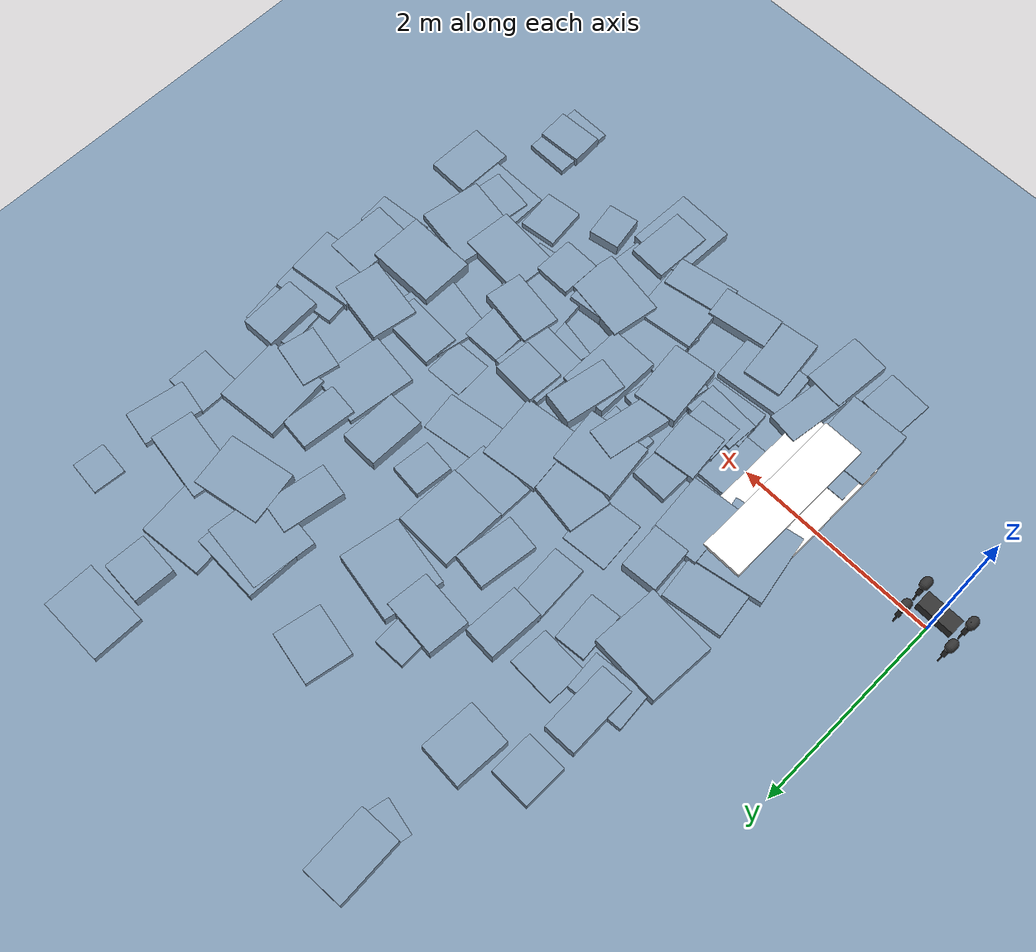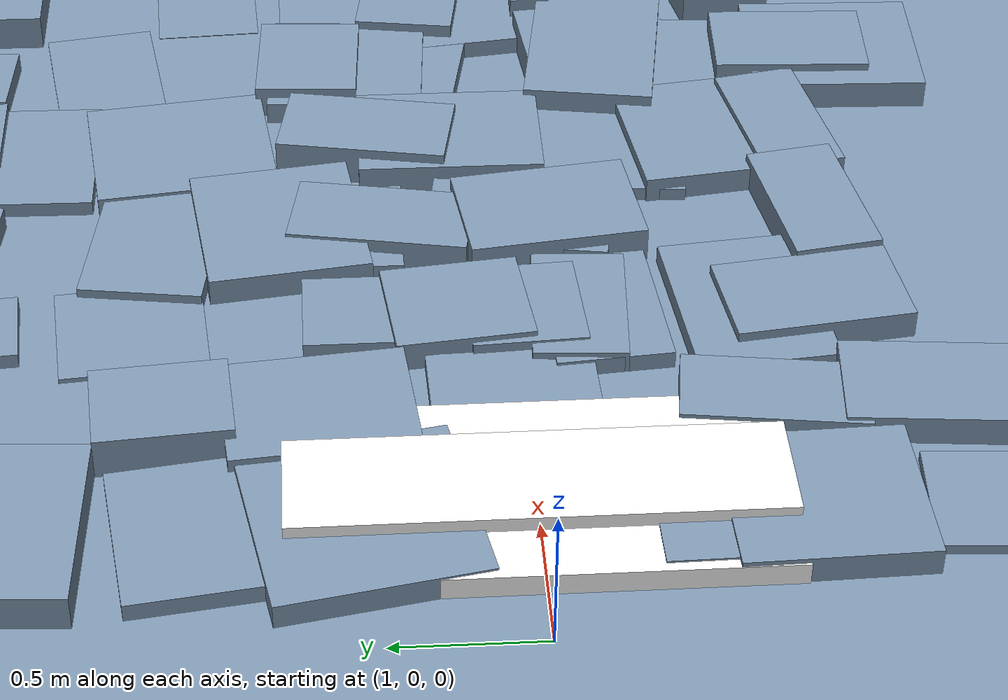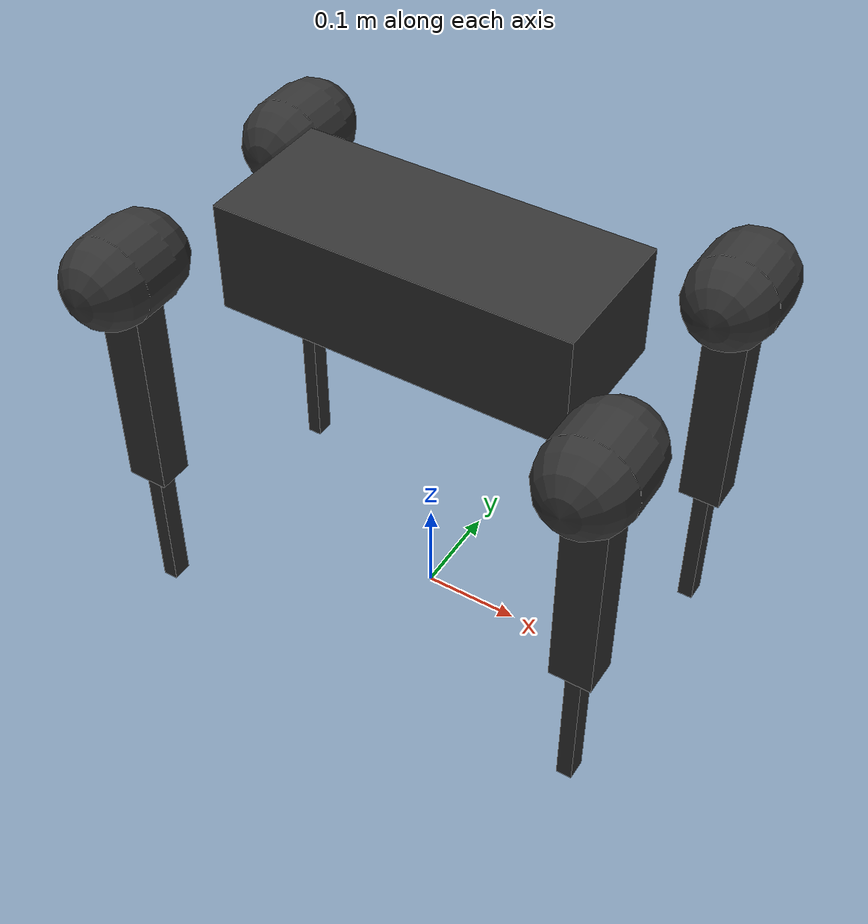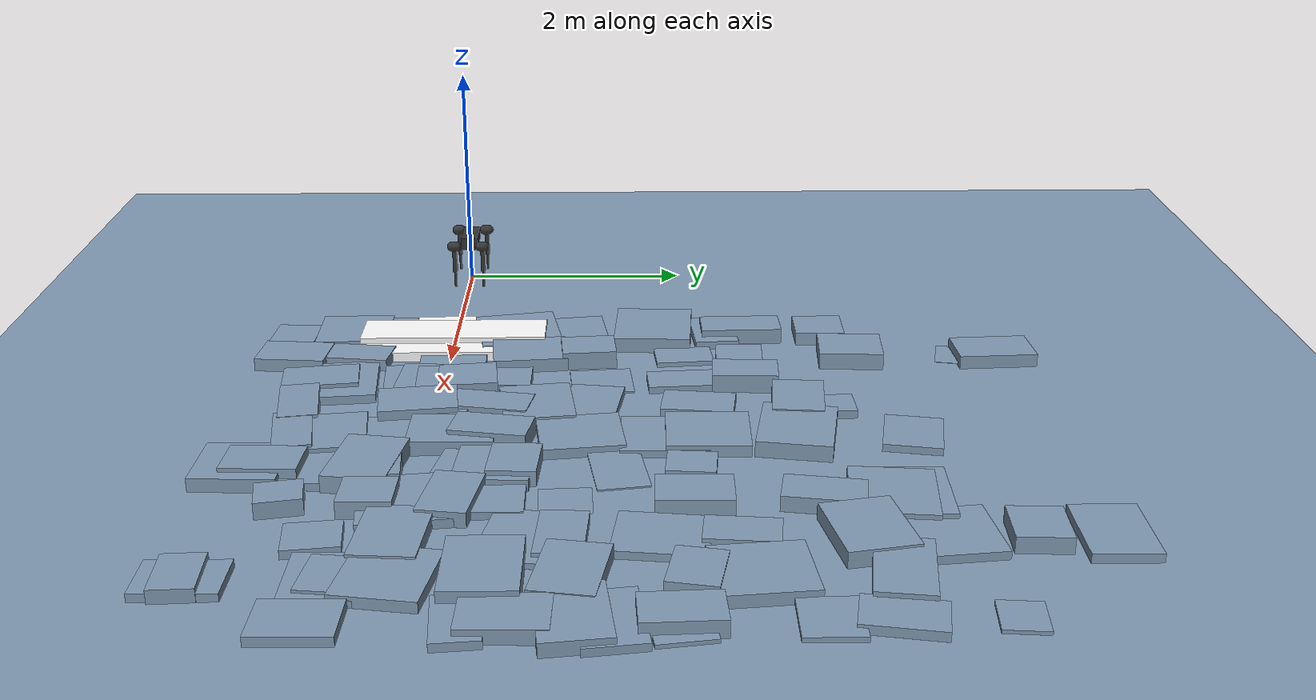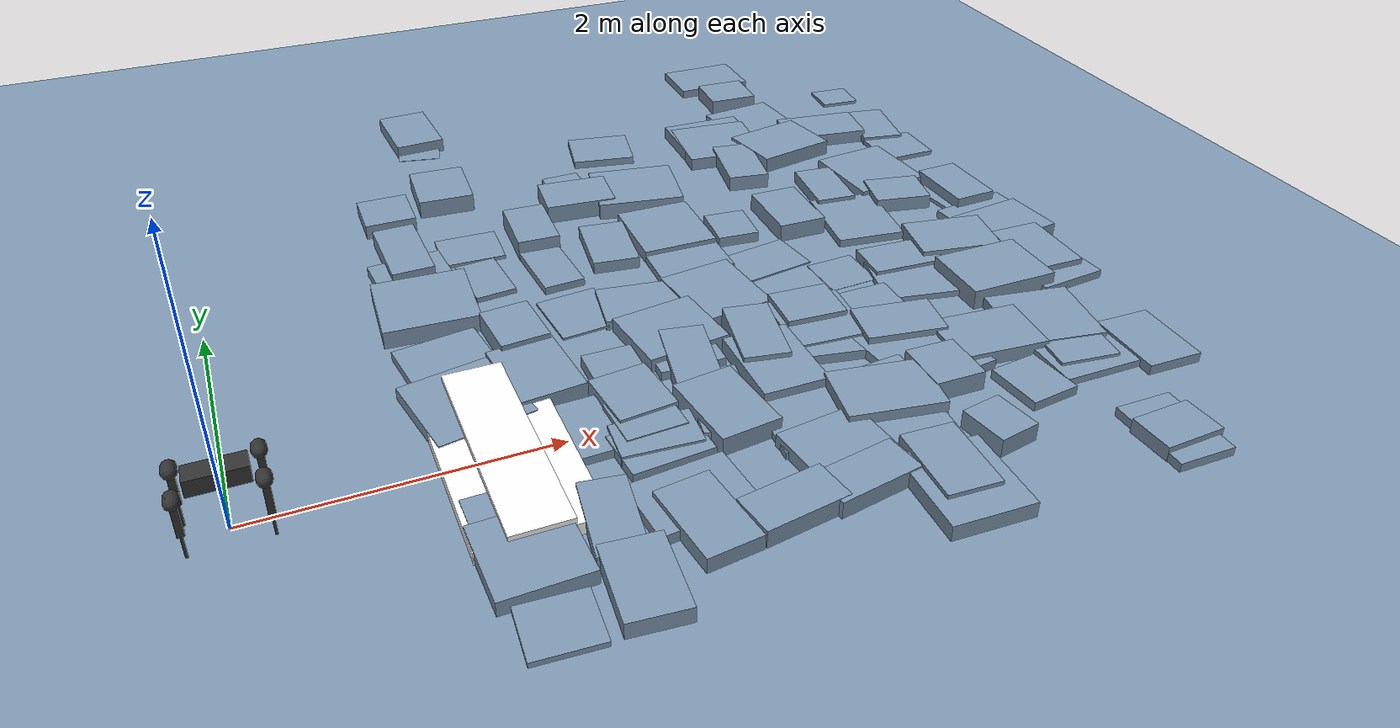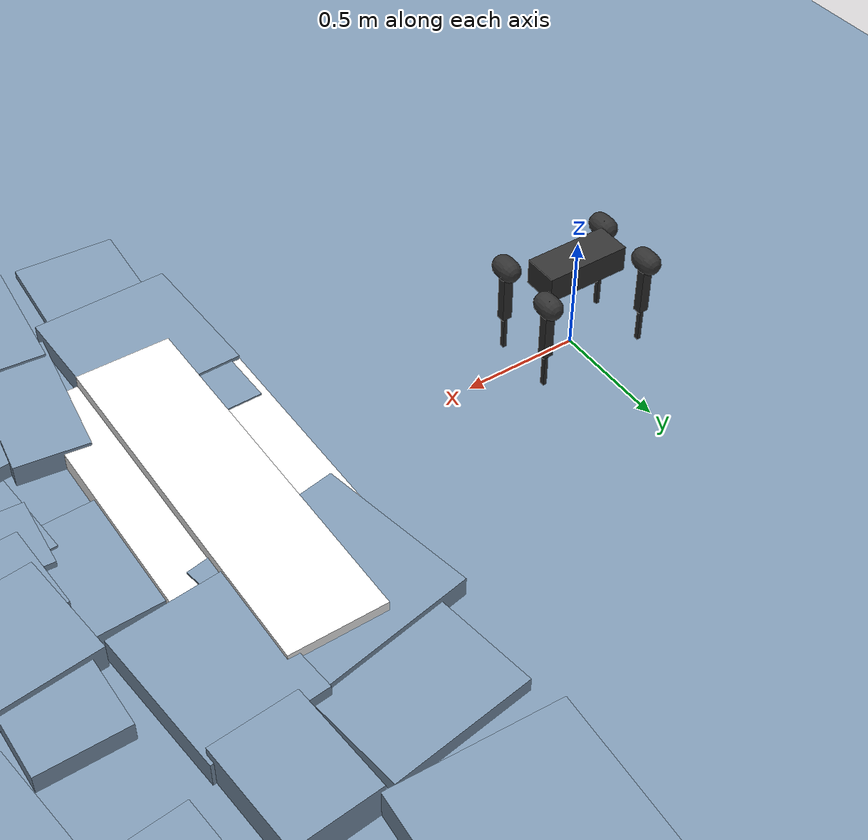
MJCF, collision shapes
<mujoco model="aliengo scene">

  <include file="aliengo_arm_leader_named.xml" />
  <include file="aliengo_arm_follower_named.xml" />

  <statistic center="0 0 0.1" extent="0.8" />

  <visual>
    <headlight diffuse="0.6 0.6 0.6" ambient="0.3 0.3 0.3" specular="0 0 0" />
    <rgba haze="0.15 0.25 0.35 1" />
    <global azimuth="-130" elevation="-20" />
  </visual>

  <asset>
    <texture type="skybox" builtin="gradient" rgb1="0.3 0.5 0.7" rgb2="0 0 0" width="512" height="3072" />
    <texture type="2d" name="groundplane" builtin="checker" mark="edge" rgb1="0.2 0.3 0.4" rgb2="0.1 0.2 0.3" markrgb="0.8 0.8 0.8" width="300" height="300" />
    <material name="groundplane" texture="groundplane" texuniform="true" texrepeat="5 5" reflectance="0.2" />
  </asset>

  <worldbody>
    <light pos="0 0 1.5" dir="0 0 -1" directional="true" />
    <geom name="floor" size="0 0 0.05" type="plane" material="groundplane" />

    <geom pos="1.6 0.0 0.025" type="box" size="0.2 0.8 0.1" quat="1.0 0.0 0.0 0.0" rgba="1 1 1 1" />
    <geom pos="1.3 0.0 0.025" type="box" size="0.1 0.8 0.05" quat="1.0 0.0 0.0 0.0" rgba="1 1 1 1" />
    <geom pos="1.9 0.0 0.025" type="box" size="0.1 0.8 0.05" quat="1.0 0.0 0.0 0.0" rgba="1 1 1 1" />
  <geom pos="1.5 -1.4174422179853896 0.02" type="box" size="0.2158256661512063 0.1974362012325551 0.01809121485055687" quat="0.999523340070565 0.0 0.0 -0.030872198726067175" /><geom pos="1.5 -0.8886456010825922 0.02" type="box" size="0.29007827083572946 0.31152130712054676 0.07232339692259922" quat="0.9999067252297956 0.0 0.0 0.013657995468805716" /><geom pos="1.5 -0.6837071723360797 0.02" type="box" size="0.2619163645718067 0.32905653796835965 0.06200295350571386" quat="0.9999670987288947 0.0 0.0 0.008111809891576638" /><geom pos="1.5 0.1465564996394355 0.02" type="box" size="0.2741165797397114 0.31778551303227276 0.010185946750093211" quat="0.9991336717000892 0.0 0.0 -0.041616175642392096" /><geom pos="1.5 0.5517550318124442 0.02" type="box" size="0.3354992326413033 0.3481867805209232 0.06291117552164183" quat="0.9958857547739877 0.0 0.0 0.09061767729447129" /><geom pos="1.5 1.010930129933246 0.02" type="box" size="0.2971721512878967 0.31560274422008583 0.038711763626778375" quat="0.9976379484668357 0.0 0.0 0.06869151169455488" /><geom pos="1.5 1.7463414973380642 0.02" type="box" size="0.34262882174813647 0.3314787214415848 0.10173134049669957" quat="0.9996430346023961 0.0 0.0 -0.026717098849101797" /><geom pos="1.5 2.2777661084453364 0.02" type="box" size="0.276793990522662 0.18751669494033243 0.04414901619069367" quat="0.9991005543941106 0.0 0.0 0.04240379946869027" /><geom pos="1.5 2.5165531158321732 0.02" type="box" size="0.15952056784318736 0.34869712839636424 0.10197383936111984" quat="0.9999053595567567 0.0 0.0 0.013757613516629411" /><geom pos="1.5 3.207055067918402 0.02" type="box" size="0.19783015536071918 0.21316122358304634 0.08371104354190896" quat="0.9999970138415886 0.0 0.0 -0.002443830580411811" /><geom pos="2.0 -1.3245887010655766 0.02" type="box" size="0.19379666454082975 0.29599077786892597 0.08071087032427668" quat="0.9990277766751177 0.0 0.0 -0.04408516112674756" /><geom pos="2.0 -0.8092888789699296 0.02" type="box" size="0.1513709995623131 0.3128838446898845 0.06985783116952915" quat="0.9977060452026343 0.0 0.0 -0.0676952536454299" /><geom pos="2.0 0.03329840536696649 0.02" type="box" size="0.2924244500880194 0.28030224308909724 0.02947323669881005" quat="0.9999039662647855 0.0 0.0 0.01385850814304347" /><geom pos="2.0 0.6814192387359341 0.02" type="box" size="0.23546644227539026 0.3121718593622482 0.08544090117068481" quat="0.998894558059947 0.0 0.0 0.04700704073033276" /><geom pos="2.0 1.1845555073069627 0.02" type="box" size="0.17681907023756116 0.22770380386590186 0.1224729761455728" quat="0.999186864920176 0.0 0.0 0.040318841389477666" /><geom pos="2.0 1.9989226568319256 0.02" type="box" size="0.15221416672049914 0.24302039011818527 0.019795036437604566" quat="0.9990563383799462 0.0 0.0 0.04343308350617482" /><geom pos="2.0 2.475270923233314 0.02" type="box" size="0.23592314379333834 0.19812001752811714 0.013959320207941536" quat="0.9998375512377693 0.0 0.0 -0.018024181947069316" /><geom pos="2.0 3.4251032742057532 0.02" type="box" size="0.2189543564535954 0.26957966274623707 0.11360782502430293" quat="0.9996307988300204 0.0 0.0 -0.027171051331430638" /><geom pos="2.0 4.333713365711712 0.02" type="box" size="0.17660613890106214 0.16361836811331404 0.0016335677559551898" quat="0.9951211542191698 0.0 0.0 -0.09866047043019407" /><geom pos="2.0 4.659154438313877 0.02" type="box" size="0.20383173531346693 0.3324783296610735 0.08349456352212502" quat="0.9995977111114939 0.0 0.0 0.028362227357217783" /><geom pos="2.5 -1.0115502591214134 0.02" type="box" size="0.18903259132760222 0.31046512648015145 0.07761107830651663" quat="0.9980553868297178 0.0 0.0 0.06233333634727316" /><geom pos="2.5 -0.791187728872013 0.02" type="box" size="0.33308861975303894 0.24317338476087377 0.04336902755184367" quat="0.9988488579892442 0.0 0.0 0.04796831134804157" /><geom pos="2.5 -0.2897883469409739 0.02" type="box" size="0.28095222945738846 0.20014230715726514 0.0396413861590984" quat="0.9991502642650326 0.0 0.0 0.04121588794525233" /><geom pos="2.5 -0.21329180720494656 0.02" type="box" size="0.2683739969139972 0.16132264849691763 0.05606908028543377" quat="0.9994456988603067 0.0 0.0 -0.03329106531237981" /><geom pos="2.5 -0.024801437720582076 0.02" type="box" size="0.2079711097251679 0.19679039341423543 0.06393460959848447" quat="0.9996359602414256 0.0 0.0 0.026980492808747494" /><geom pos="2.5 0.20069568695615692 0.02" type="box" size="0.20519845195540043 0.23759001316480974 0.08324843830631763" quat="0.9985582581786784 0.0 0.0 0.0536787203942478" /><geom pos="2.5 0.5656656707005201 0.02" type="box" size="0.1782204359744921 0.1602972509261111 0.0585092887706532" quat="0.999999772803856 0.0 0.0 -0.00067408622330208" /><geom pos="2.5 1.3054753535915191 0.02" type="box" size="0.22507007695534403 0.25210944369718463 0.008468153251933203" quat="0.9989861103055606 0.0 0.0 0.04501945597812505" /><geom pos="2.5 1.9754879102667329 0.02" type="box" size="0.15493674745962865 0.2908033741387673 0.029410408059955748" quat="0.9994465076505489 0.0 0.0 0.03326677539409859" /><geom pos="2.5 2.491083584937308 0.02" type="box" size="0.1624980306550094 0.2709145531614455 0.12495050920433891" quat="0.9997531255806753 0.0 0.0 -0.022219088452737224" /><geom pos="3.0 -1.0943066555857688 0.02" type="box" size="0.2946037810589746 0.1563166480093094 0.09560809274549852" quat="0.9968743621113103 0.0 0.0 0.07900320351206092" /><geom pos="3.0 -0.14959180356808854 0.02" type="box" size="0.2145399906696444 0.312770852232323 0.10428036383559043" quat="0.9981197279277708 0.0 0.0 0.06129444282635003" /><geom pos="3.0 -0.048410956195437116 0.02" type="box" size="0.18829128742906204 0.32312684468121367 0.06032833185419177" quat="0.9971012754029867 0.0 0.0 -0.07608578441297316" /><geom pos="3.0 0.4369129245330967 0.02" type="box" size="0.1569411960665551 0.31833891031323425 0.08493360327240822" quat="0.9959149273741025 0.0 0.0 -0.0902964973486578" /><geom pos="3.0 0.5602422238706111 0.02" type="box" size="0.23301274856895354 0.1936562467776612 0.03540150315268338" quat="0.9999611028164593 0.0 0.0 -0.008820025742055477" /><geom pos="3.0 0.7993784996858069 0.02" type="box" size="0.30530270994139347 0.28409359655845956 0.07334992572297407" quat="0.9979185965117734 0.0 0.0 0.06448623679493448" /><geom pos="3.0 1.2319178197857616 0.02" type="box" size="0.3470129820077583 0.21648375223955446 0.041649419656663425" quat="0.9973052147091953 0.0 0.0 -0.07336421957498017" /><geom pos="3.0 2.0845261750990547 0.02" type="box" size="0.17682036491966407 0.2906907531144052 0.06221464145649916" quat="0.9981391045361115 0.0 0.0 -0.060978094393391115" /><geom pos="3.0 2.87970033504162 0.02" type="box" size="0.2793165772926011 0.20707261232007124 0.11104287277475419" quat="0.9990715113806214 0.0 0.0 -0.04308265483510433" /><geom pos="3.0 3.181392115445507 0.02" type="box" size="0.15383008270766882 0.15538814032841436 0.03697903907605429" quat="0.9998545958073852 0.0 0.0 0.017052484946490462" /><geom pos="3.5 -1.046949338819988 0.02" type="box" size="0.2993333092174169 0.15064205276398862 0.09205309419731393" quat="0.9960503807680614 0.0 0.0 0.0887898584963395" /><geom pos="3.5 -0.8263705613846001 0.02" type="box" size="0.29560312163156877 0.3445394318631808 0.0682766598180881" quat="0.9980726996524941 0.0 0.0 0.062055509089704274" /><geom pos="3.5 -0.4169052137777034 0.02" type="box" size="0.31983675990984406 0.2664285212195369 0.024997337489686328" quat="0.9995278125707885 0.0 0.0 -0.030727054812571014" /><geom pos="3.5 0.1742982662346071 0.02" type="box" size="0.2362170553079273 0.3347532167838412 0.0873854633126539" quat="0.9999943818698547 0.0 0.0 -0.003352048437485922" /><geom pos="3.5 0.4762491480356019 0.02" type="box" size="0.16473749078051447 0.30782704461414556 0.12343856575901335" quat="0.9959277187147205 0.0 0.0 -0.09015530542176883" /><geom pos="3.5 1.1562316563026496 0.02" type="box" size="0.28092636110583097 0.3248205499366168 0.05327283374185965" quat="0.9982108586757799 0.0 0.0 0.059791986267075894" /><geom pos="3.5 1.8064709769633147 0.02" type="box" size="0.2930136123953113 0.34301152862897655 0.030222444001636525" quat="0.9999582200878604 0.0 0.0 -0.009141010814903918" /><geom pos="3.5 2.1367121283895 0.02" type="box" size="0.29151426630577154 0.3257110707294587 0.06726348367909206" quat="0.9999815027983265 0.0 0.0 -0.006082274344389796" /><geom pos="3.5 2.8249233927764186 0.02" type="box" size="0.34517013501019356 0.2934984646872102 0.10134621719331548" quat="0.9964114126945256 0.0 0.0 -0.08464216828566998" /><geom pos="3.5 3.7230724346648305 0.02" type="box" size="0.2601488709091854 0.22890517877626065 0.031321023241439316" quat="0.9958017447588003 0.0 0.0 -0.091536250389281" /><geom pos="4.0 -1.3252709225848909 0.02" type="box" size="0.28338087181684085 0.3232187081091171 0.08092989300417136" quat="0.9998682844047296 0.0 0.0 -0.01623002900621652" /><geom pos="4.0 -1.1577463232550644 0.02" type="box" size="0.1856209683685977 0.288606302831777 0.11038330716149415" quat="0.999748694785526 0.0 0.0 -0.022417566206823513" /><geom pos="4.0 -0.8269959753717331 0.02" type="box" size="0.2639139826040676 0.21879204352738055 0.03347111276359796" quat="0.999252527805292 0.0 0.0 -0.038657284885701824" /><geom pos="4.0 -0.4065558766024626 0.02" type="box" size="0.33511085148267994 0.239592577121516 0.10928597628566644" quat="0.9968576364874777 0.0 0.0 -0.07921396705505769" /><geom pos="4.0 -0.3519034375336956 0.02" type="box" size="0.28272031706409195 0.20631744989143885 0.10294335292849376" quat="0.9988649601861499 0.0 0.0 0.04763183087307353" /><geom pos="4.0 0.33336592320079017 0.02" type="box" size="0.2179373872674167 0.2264273940487563 0.041794812039564755" quat="0.9957831000725842 0.0 0.0 -0.0917388555075431" /><geom pos="4.0 0.5363403510585965 0.02" type="box" size="0.27785493474361544 0.28800310751828617 0.058212297053150744" quat="0.9994632769374251 0.0 0.0 -0.032759091158087124" /><geom pos="4.0 0.6831903420557079 0.02" type="box" size="0.22305683374521254 0.18824209464528163 0.09735867041525294" quat="0.999607357686289 0.0 0.0 -0.02802017950398263" /><geom pos="4.0 1.4496496928464215 0.02" type="box" size="0.32425697204944137 0.19867669094609328 0.0059177347138938685" quat="0.9972091737725184 0.0 0.0 0.07465831329417486" /><geom pos="4.0 1.993465911330821 0.02" type="box" size="0.16328759573827675 0.18881335828503254 0.05134832214688492" quat="0.9990679902992349 0.0 0.0 -0.04316423009214734" /><geom pos="4.5 -0.9424573615391397 0.02" type="box" size="0.15061616381285997 0.1732625574823039 0.10257847103928347" quat="0.9958746809947502 0.0 0.0 0.09073929553178493" /><geom pos="4.5 -0.31699131320986984 0.02" type="box" size="0.1823801179242186 0.2004100554814909 0.11294159346744277" quat="0.9999808981090212 0.0 0.0 -0.0061808912848693" /><geom pos="4.5 -0.05749066974984207 0.02" type="box" size="0.34496532017467973 0.34086435647222757 0.04194854716644379" quat="0.9982269223849312 0.0 0.0 0.05952320073642326" /><geom pos="4.5 0.2682997003535914 0.02" type="box" size="0.29083218731737775 0.18676755107938592 0.09141575193808768" quat="0.9970619622112944 0.0 0.0 -0.07659923962653503" /><geom pos="4.5 0.5963387387554171 0.02" type="box" size="0.19757739223350385 0.1964733716465852 0.02976951217191401" quat="0.9999739469152494 0.0 0.0 0.007218413311657299" /><geom pos="4.5 1.0789707216783988 0.02" type="box" size="0.1892766368562454 0.19263773675759882 0.0012595347333741597" quat="0.9996917831765811 0.0 0.0 0.024826168637701183" /><geom pos="4.5 1.9970299848347581 0.02" type="box" size="0.19128899841863342 0.2832436872047358 0.10901237934997114" quat="0.999980373669378 0.0 0.0 -0.006265163689106606" /><geom pos="4.5 2.9181808379260223 0.02" type="box" size="0.16677683825468903 0.3036347759391822 0.09439050360086841" quat="0.9966295927266113 0.0 0.0 -0.08203325485185169" /><geom pos="4.5 3.4066862579994224 0.02" type="box" size="0.33685173723932815 0.31598290815031216 0.073594140886547" quat="0.9988223421066106 0.0 0.0 -0.04851730524941663" /><geom pos="4.5 3.5648910135062417 0.02" type="box" size="0.341277982887229 0.2544158057739707 0.07338435178241459" quat="0.999928355971966 0.0 0.0 -0.011970084511023125" /><geom pos="5.0 -0.6169554950595848 0.02" type="box" size="0.18213487634755118 0.2050184533916255 0.03928045069395818" quat="0.9982071343113812 0.0 0.0 0.05985413110103672" /><geom pos="5.0 -0.0800442925151148 0.02" type="box" size="0.3357712590091431 0.23780358100321208 0.07325056604806165" quat="0.9992496945609123 0.0 0.0 -0.038730452100686145" /><geom pos="5.0 0.799080126455844 0.02" type="box" size="0.34137304704807936 0.26779538453591617 0.02305918000840851" quat="0.995873549303741 0.0 0.0 -0.09075171511971204" /><geom pos="5.0 1.070287550702104 0.02" type="box" size="0.2878117961474973 0.17397469349553257 0.05111729674458551" quat="0.9996352172736683 0.0 0.0 -0.02700800596538032" /><geom pos="5.0 1.7591192665986775 0.02" type="box" size="0.2682807501436054 0.33762868668280444 0.03257909758475064" quat="0.9980028964210316 0.0 0.0 -0.06316817818515755" /><geom pos="5.0 2.302972283782438 0.02" type="box" size="0.16009632528006112 0.2711199757606468 0.06518857291329506" quat="0.9987807590768782 0.0 0.0 -0.04936593256300213" /><geom pos="5.0 3.1631920013929724 0.02" type="box" size="0.33430007454212596 0.26376788131992307 0.0969454372270926" quat="0.9954063816096228 0.0 0.0 0.09573993655125322" /><geom pos="5.0 3.7241754058924466 0.02" type="box" size="0.31577846670675136 0.3183448819012602 0.03599003759850093" quat="0.9984813020856069 0.0 0.0 0.055091645332400456" /><geom pos="5.0 4.323871717130019 0.02" type="box" size="0.2118713685585188 0.20110206575736228 0.09959262956867757" quat="0.9997435691857208 0.0 0.0 -0.022644996617260483" /><geom pos="5.0 4.840910401740512 0.02" type="box" size="0.3342953494664468 0.2468829424650349 0.0416792983718432" quat="0.9999958440516991 0.0 0.0 -0.002883033008838587" /><geom pos="5.5 -1.3867255552345616 0.02" type="box" size="0.22138465540086416 0.1566526355040535 0.0756368076700809" quat="0.9996465374249541 0.0 0.0 0.02658571447789" /><geom pos="5.5 -1.368564950867872 0.02" type="box" size="0.20681869074267878 0.2964729187685849 0.034411946916982" quat="0.9999985640344742 0.0 0.0 -0.0016946766622951716" /><geom pos="5.5 -0.4022294605666219 0.02" type="box" size="0.21892034395926224 0.1906194128640018 0.04855909273023547" quat="0.9982724234260512 0.0 0.0 -0.05875515830187946" /><geom pos="5.5 -0.37574462613418946 0.02" type="box" size="0.29284178870491084 0.333002927729864 0.026781263438574024" quat="0.9999998804019086 0.0 0.0 -0.0004890768533195866" /><geom pos="5.5 -0.039585141918791145 0.02" type="box" size="0.31829161717677923 0.3028219395102404 0.05597593022706454" quat="0.9966866241668071 0.0 0.0 -0.08133740349294345" /><geom pos="5.5 0.5777523035918009 0.02" type="box" size="0.3429285054984303 0.2662114815848045 0.12037237067372734" quat="0.9999985892868974 0.0 0.0 0.0016797095627225974" /><geom pos="5.5 1.1508333455900779 0.02" type="box" size="0.3194195319863309 0.22757385029036042 0.08471277869874452" quat="0.9963880424260951 0.0 0.0 -0.0849168352583513" /><geom pos="5.5 1.973598379703284 0.02" type="box" size="0.22691721060103906 0.18318938346671937 0.08391736489455896" quat="0.9951966648953509 0.0 0.0 -0.09789585374861733" /><geom pos="5.5 2.403015576063175 0.02" type="box" size="0.31060814714268387 0.3364712091598494 0.06670711488381487" quat="0.9987869898321319 0.0 0.0 0.04923970899658954" /><geom pos="5.5 3.3235063500956583 0.02" type="box" size="0.3499859395549121 0.20768081042678488 0.07861562497187549" quat="0.9975475780296272 0.0 0.0 -0.06999163926659191" /><geom pos="6.0 -0.531848199071087 0.02" type="box" size="0.2066634996442175 0.2827736485778719 0.04465770715458006" quat="0.999964959590485 0.0 0.0 -0.008371355397993822" /><geom pos="6.0 0.4566757377332398 0.02" type="box" size="0.2678905057970516 0.1653058021538868 0.03524300888461222" quat="0.9989595029342522 0.0 0.0 0.045606046719177985" /><geom pos="6.0 0.7542184098702989 0.02" type="box" size="0.2089547913249905 0.3001803728311674 0.0810289510105987" quat="0.9999637169310204 0.0 0.0 -0.00851849878195775" /><geom pos="6.0 1.179357140056847 0.02" type="box" size="0.3235379713634223 0.24028842626442612 0.07740620015684986" quat="0.9982296608246317 0.0 0.0 0.0594772582584356" /><geom pos="6.0 1.4129742177693867 0.02" type="box" size="0.3175060042850115 0.21640019291301346 0.031169676706356383" quat="0.997859740425469 0.0 0.0 0.06539066017418398" /><geom pos="6.0 1.848772008816605 0.02" type="box" size="0.25911992585767424 0.2032567961641734 0.014996719499816027" quat="0.9974556345848685 0.0 0.0 0.07128995044813329" /><geom pos="6.0 1.8593910078699563 0.02" type="box" size="0.1730918642535424 0.28192042318256944 0.10564131733674678" quat="0.9997395307374871 0.0 0.0 0.022822591456473657" /><geom pos="6.0 2.7868351313945228 0.02" type="box" size="0.22706141035214364 0.20884711566355427 0.019264432726920203" quat="0.9999999800601471 0.0 0.0 -0.00019969903689586577" /><geom pos="6.0 3.239505928249126 0.02" type="box" size="0.17492000366075994 0.28543534967828743 0.04254670792362242" quat="0.9961113990325939 0.0 0.0 -0.08810267145398262" /><geom pos="6.0 3.9810036160322255 0.02" type="box" size="0.16812585031633331 0.15649764362439078 0.013483968953867026" quat="0.9990698417996832 0.0 0.0 -0.04312135441235639" /></worldbody>

    <keyframe>

        <key name="leader_home" qpos="0.8 0 0.35 1 0 0 0 0 0.9 -1.8 0 0.9 -1.8 0 0.9 -1.8 0 0.9 -1.8 0 0 0. 0.8
                                      -0.8 0  0.35 1 0 0 0 0 0.9 -1.8 0 0.9 -1.8 0 0.9 -1.8 0 0.9 -1.8 0 0 0. 0.8
        0 0 0.35 1 0 0 0                                                                                                                              "
        ctrl="0 0.9 -1.8 0 0.9 -1.8 0 0.9 -1.8 0 0.9 -1.8 0 0 0 0 0.9 -1.8 0 0.9 -1.8 0 0.9 -1.8 0 0.9 -1.8 0 0 0                      " />

    </keyframe>
</mujoco>

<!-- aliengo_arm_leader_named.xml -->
<mujoco model="aliengo_description">
    <compiler angle="radian" meshdir="./assets/" autolimits="true"/>
    <option cone="elliptic" impratio="100" />
    <size njmax="500" nconmax="100" />
    <option gravity='0 0 -9.806' timestep='0.002'/>

    <default>
        <geom contype="1" conaffinity="1" friction="0.8 0.02 0.01" rgba="0.5 0.6 0.7 1" margin="0.001" group="0"/>

        <light castshadow="false" diffuse="1 1 1"/>
        <camera fovy="60"/>
        <joint damping="3" armature="0.01" frictionloss="0.2" />

        <default class="leader/visual">
            <geom type="mesh" contype="0" conaffinity="0" group="2"/>
        </default>
        <default class="leader/collision">
            <geom group="3" rgba="0.2 0.2 0.2 0.5"/>
        </default>

        <default class="leader/hip">
            <motor ctrlrange="-44.4 44.4"/>
        </default>
        <default class="leader/thigh">
            <motor ctrlrange="-35.278 35.278"/>
        </default>
        <default class="leader/calf">
            <motor ctrlrange="-35.278 35.278"/>
        </default>

    </default>
    <!-- No rename the assests these are the mesh files-->
    <asset>
        <mesh name="leader/trunk" file="trunk.stl" />
        <mesh name="leader/hip" file="hip.stl" />
        <mesh name="leader/thigh_mirror" file="thigh_mirror.stl" />
        <mesh name="leader/calf" file="calf.stl" />
        <mesh name="leader/thigh" file="thigh.stl" />

    </asset>

    <!-- pos is used to set the position-->
    <worldbody>
        <light directional="true" diffuse=".8 .8 .8" pos="0 0 10" dir="0 0 -10"/>
        <camera pos="1.794 0.068 0.397" mode="trackcom" xyaxes="0.008 1.000 0.000 -0.155 0.001 0.988"/>
        <camera name="leader/track" mode="trackcom" pos="0 -1.3 1.6" xyaxes="1 0 0 0 0.707 0.707"/>

        <body name="leader/trunk" pos="0 0 0.4">
            <inertial pos="0.00846406 0.00404455 -0.000762916" quat="-3.12625e-05 0.708321 0.00247254 0.705886" mass="13.042" diaginertia="0.174706 0.161175 0.033357" />
            <freejoint/>

            <!-- trunk visual mesh and collision -->
            <geom type="mesh" class="leader/visual" rgba="0.2 0.2 0.2 1" mesh="leader/trunk"/>
            <geom type="box" class="leader/collision" size="0.18 0.075 0.056"/>

            <!-- modify this to add payload -->

            <!-- imu and camera -->
            <site name="leader/imu" pos="0 0 0"/>
            <camera name="leader/robotcam" pos="0.31 -0.005 0.00292751" quat= "0.4 0.4 -0.4 -0.4"/>

            <!-- FL leg -->
            <body name="leader/FL_hip" pos="0.2399 0.051 0">
                <inertial pos="-0.022191 0.015144 -1.5e-05" quat="-0.0135493 0.706835 0.0117635 0.707151" mass="1.993" diaginertia="0.00558695 0.00491009 0.00290132" />
                <joint name="leader/FL_hip_joint" pos="0 0 0" axis="1 0 0" limited="true" range="-1.22173 1.22173" />

                <!-- FL_hip visual mesh and collision -->
                <geom type="mesh" class="leader/visual" rgba="0.2 0.2 0.2 1" mesh="leader/hip"/>
                <geom type="capsule" class="leader/collision" size="0.046 0.0209" pos="0 0.083 0" quat="0.707107 0.707107 0 0"/>

                <body name="leader/FL_thigh" pos="0 0.083 0">
                    <inertial pos="-0.005607 -0.003877 -0.048199" quat="0.717987 -0.031246 -0.0335669 0.694544" mass="0.639" diaginertia="0.0058474 0.00571186 0.000324584" />
                    <joint name="leader/FL_thigh_joint" pos="0 0 0" axis="0 1 0" />

                    <!-- FL_thigh visual mesh and collision -->
                    <geom type="mesh" class="leader/visual" rgba="0.2 0.2 0.2 1" mesh="leader/thigh"/>
                    <geom type="box" class="leader/collision" size="0.125 0.0187 0.0215" pos="0 0 -0.125" quat="0.707107 0 0.707107 0"/>

                    <body name="leader/FL_calf" pos="0 0 -0.25">
                        <inertial pos="0.00215606 4.88427e-05 -0.166671" quat="0.707462 0.00517582 0.00535172 0.706712" mass="0.267" diaginertia="0.00690975 0.00689712 5.4885e-05" />
                        <joint name="leader/FL_calf_joint" pos="0 0 0" axis="0 1 0" limited="true" range="-2.77507 -0.645772" />

                        <!-- FL_calf visual mesh and collision -->
                        <geom type="mesh" class="leader/visual" rgba="0 0 0 1" mesh="leader/calf" />
                        <geom type="box" class="leader/collision" size="0.125 0.0104 0.008" pos="0 0 -0.125" quat="0.707107 0 0.707107 0"/>

                        <!-- FL_foot only collision -->
                        <geom name="FL1" class="leader/collision" size="0.0265" pos="0 0 -0.25" />
                    </body>
                </body>
            </body>

            <!-- FR leg -->
            <body name="leader/FR_hip" pos="0.2399 -0.051 0">
                <inertial pos="-0.022191 -0.015144 -1.5e-05" quat="0.0135493 0.706835 -0.0117635 0.707151" mass="1.993" diaginertia="0.00558695 0.00491009 0.00290132" />
                <joint name="leader/FR_hip_joint" pos="0 0 0" axis="1 0 0" limited="true" range="-1.22173 1.22173" />

                <!-- FR_hip visual mesh and collision -->
                <geom type="mesh" mesh="leader/hip" class="leader/visual" quat="0 1 0 0" rgba="0.2 0.2 0.2 1"/>
                <geom type="capsule" class="leader/collision" size="0.046 0.0209" pos="0 -0.083 0" quat="0.707107 0.707107 0 0"/>

                <body name="leader/FR_thigh" pos="0 -0.083 0">
                    <inertial pos="-0.005607 0.003877 -0.048199" quat="0.694544 -0.0335669 -0.031246 0.717987" mass="0.639" diaginertia="0.0058474 0.00571186 0.000324584" />
                    <joint name="leader/FR_thigh_joint" pos="0 0 0" axis="0 1 0" />

                    <!-- FR_thigh visual mesh and collision -->
                    <geom type="mesh" mesh="leader/thigh_mirror" class="leader/visual" rgba="0.2 0.2 0.2 1" />
                    <geom type="box" class="leader/collision" size="0.125 0.0187 0.0215" pos="0 0 -0.125" quat="0.707107 0 0.707107 0"/>

                    <body name="leader/FR_calf" pos="0 0 -0.25">
                        <inertial pos="0.00215606 4.88427e-05 -0.166671" quat="0.707462 0.00517582 0.00535172 0.706712" mass="0.267" diaginertia="0.00690975 0.00689712 5.4885e-05" />
                        <joint name="leader/FR_calf_joint" pos="0 0 0" axis="0 1 0" limited="true" range="-2.77507 -0.645772" />

                        <!-- FR_calf visual mesh and collision -->
                        <geom type="mesh" mesh="leader/calf" class="leader/visual" rgba="0 0 0 1"/>
                        <geom type="box" class="leader/collision" size="0.125 0.0104 0.008" pos="0 0 -0.125" quat="0.707107 0 0.707107 0"/>

                        <!-- FR_foot only collision -->
                        <geom name="FR1" class="leader/collision" size="0.0265" pos="0 0 -0.25"/>
                    </body>
                </body>
            </body>

            <!-- RL leg -->
            <body name="leader/RL_hip" pos="-0.2399 0.051 0">
                <inertial pos="0.022191 0.015144 -1.5e-05" quat="0.0117635 0.707151 -0.0135493 0.706835" mass="1.993" diaginertia="0.00558695 0.00491009 0.00290132" />
                <joint name="leader/RL_hip_joint" pos="0 0 0" axis="1 0 0" limited="true" range="-1.22173 1.22173" />

                <!-- RL_hip visual mesh and collision -->
                <geom type="mesh" class="leader/visual" quat="0 0 1 0" rgba="0.2 0.2 0.2 1" mesh="leader/hip"/>
                <geom type="capsule" class="leader/collision" size="0.046 0.0209" pos="0 0.083 0" quat="0.707107 0.707107 0 0"/>

                <body name="leader/RL_thigh" pos="0 0.083 0">
                    <inertial pos="-0.005607 -0.003877 -0.048199" quat="0.717987 -0.031246 -0.0335669 0.694544" mass="0.639" diaginertia="0.0058474 0.00571186 0.000324584" />
                    <joint name="leader/RL_thigh_joint" pos="0 0 0" axis="0 1 0" />

                    <!-- RL_thigh visual mesh and collision -->
                    <geom type="mesh" class="leader/visual" rgba="0.2 0.2 0.2 1" mesh="leader/thigh"/>
                    <geom type="box" class="leader/collision" size="0.125 0.0187 0.0215" pos="0 0 -0.125" quat="0.707107 0 0.707107 0"/>

                    <body name="leader/RL_calf" pos="0 0 -0.25">
                        <inertial pos="0.00215606 4.88427e-05 -0.166671" quat="0.707462 0.00517582 0.00535172 0.706712" mass="0.267" diaginertia="0.00690975 0.00689712 5.4885e-05" />
                        <joint name="leader/RL_calf_joint" pos="0 0 0" axis="0 1 0" limited="true" range="-2.77507 -0.645772" />

                        <!-- RL_calf visual mesh and collision -->
                        <geom type="mesh" class="leader/visual" rgba="0 0 0 1" mesh="leader/calf"/>
                        <geom type="box" class="leader/collision" size="0.125 0.0104 0.008" pos="0 0 -0.125" quat="0.707107 0 0.707107 0"/>

                        <!-- RL_foot only collision -->
                        <geom name="RL1" class="leader/collision" size="0.0265" pos="0 0 -0.25"/>
                    </body>
                </body>
            </body>

            <!-- RR leg -->
            <body name="leader/RR_hip" pos="-0.2399 -0.051 0">
                <inertial pos="0.022191 -0.015144 -1.5e-05" quat="-0.0117635 0.707151 0.0135493 0.706835" mass="1.993" diaginertia="0.00558695 0.00491009 0.00290132" />
                <joint name="leader/RR_hip_joint" pos="0 0 0" axis="1 0 0" limited="true" range="-1.22173 1.22173" />

                <!-- RR_hip visual mesh and collision -->
                <geom type="mesh" class="leader/visual" quat="0 0 0 -1" rgba="0.2 0.2 0.2 1" mesh="leader/hip"/>
                <geom type="capsule" class="leader/collision" size="0.046 0.0209" pos="0 -0.083 0" quat="0.707107 0.707107 0 0"/>

                <body name="leader/RR_thigh" pos="0 -0.083 0">
                    <inertial pos="-0.005607 0.003877 -0.048199" quat="0.694544 -0.0335669 -0.031246 0.717987" mass="0.639" diaginertia="0.0058474 0.00571186 0.000324584" />
                    <joint name="leader/RR_thigh_joint" pos="0 0 0" axis="0 1 0" />

                    <!-- RR_thigh visual mesh and collision -->
                    <geom type="mesh" class="leader/visual" rgba="0.2 0.2 0.2 1" mesh="leader/thigh_mirror"/>
                    <geom type="box" class="leader/collision" size="0.125 0.0187 0.0215" pos="0 0 -0.125" quat="0.707107 0 0.707107 0"/>

                    <body name="leader/RR_calf" pos="0 0 -0.25">
                        <inertial pos="0.00215606 4.88427e-05 -0.166671" quat="0.707462 0.00517582 0.00535172 0.706712" mass="0.267" diaginertia="0.00690975 0.00689712 5.4885e-05" />
                        <joint name="leader/RR_calf_joint" pos="0 0 0" axis="0 1 0" limited="true" range="-2.77507 -0.645772" />

                        <!-- RR_calf visual mesh and collision -->
                        <geom type="mesh" class="leader/visual" rgba="0 0 0 1" mesh="leader/calf"/>
                        <geom type="box" class="leader/collision" size="0.125 0.0104 0.008" pos="0 0 -0.125" quat="0.707107 0 0.707107 0"/>

                        <!-- RR_foot only collision -->
                        <geom name="RR1" class="leader/collision" size="0.0265" pos="0 0 -0.25" rgba="0 0 0 0"/>
                    </body>
                </body>
            </body>

            <!-- LEADER CONFIGURATION -->

        </body>

        <!-- add a box mounting point -->

    </worldbody>

    <actuator>
        <motor name="leader/FR_hip"   class="leader/hip"    gear="1" joint="leader/FR_hip_joint"/>
        <motor name="leader/FR_thigh" class="leader/thigh"  gear="1" joint="leader/FR_thigh_joint"/>
        <motor name="leader/FR_calf"  class="leader/calf"   gear="1" joint="leader/FR_calf_joint"/>
        <motor name="leader/FL_hip"   class="leader/hip"    gear="1" joint="leader/FL_hip_joint"/>
        <motor name="leader/FL_thigh" class="leader/thigh"  gear="1" joint="leader/FL_thigh_joint"/>
        <motor name="leader/FL_calf"  class="leader/calf"   gear="1" joint="leader/FL_calf_joint"/>
        <motor name="leader/RR_hip"   class="leader/hip"    gear="1" joint="leader/RR_hip_joint"/>
        <motor name="leader/RR_thigh" class="leader/thigh"  gear="1" joint="leader/RR_thigh_joint"/>
        <motor name="leader/RR_calf"  class="leader/calf"   gear="1" joint="leader/RR_calf_joint" />
        <motor name="leader/RL_hip"   class="leader/hip"    gear="1" joint="leader/RL_hip_joint"/>
        <motor name="leader/RL_thigh" class="leader/thigh"  gear="1" joint="leader/RL_thigh_joint"/>
        <motor name="leader/RL_calf"  class="leader/calf"   gear="1" joint="leader/RL_calf_joint"/>
    </actuator>

    <sensor>

    </sensor>

    <!--this defines the initial position of the robot-->
</mujoco>

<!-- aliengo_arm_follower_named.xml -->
<mujoco model="aliengo_description">
    <compiler angle="radian" meshdir="./assets/" autolimits="true"/>
    <option cone="elliptic" impratio="100" />
    <size njmax="500" nconmax="100" />
    <option gravity='0 0 -9.806' timestep='0.002'/>

    <default>
        <geom contype="1" conaffinity="1" friction="0.8 0.02 0.01" rgba="0.5 0.6 0.7 1" margin="0.001" group="0"/>

        <light castshadow="false" diffuse="1 1 1"/>
        <camera fovy="60"/>
        <joint damping="3" armature="0.01" frictionloss="0.2" />

        <default class="follower/visual">
            <geom type="mesh" contype="0" conaffinity="0" group="2"/>
        </default>
        <default class="follower/collision">
            <geom group="3" rgba="0.2 0.2 0.2 0.5"/>
        </default>

        <default class="follower/hip">
            <motor ctrlrange="-44.4 44.4"/>
        </default>
        <default class="follower/thigh">
            <motor ctrlrange="-35.278 35.278"/>
        </default>
        <default class="follower/calf">
            <motor ctrlrange="-35.278 35.278"/>
        </default>

    </default>
    <!-- No rename the assests these are the mesh files-->
    <asset>
        <mesh name="follower/trunk" file="trunk.stl" />
        <mesh name="follower/hip" file="hip.stl" />
        <mesh name="follower/thigh_mirror" file="thigh_mirror.stl" />
        <mesh name="follower/calf" file="calf.stl" />
        <mesh name="follower/thigh" file="thigh.stl" />

    </asset>

    <!-- pos is used to set the position-->
    <worldbody>
        <light directional="true" diffuse=".8 .8 .8" pos="0 0 10" dir="0 0 -10"/>
        <camera pos="1.794 0.068 0.397" mode="trackcom" xyaxes="0.008 1.000 0.000 -0.155 0.001 0.988"/>
        <camera name="follower/track" mode="trackcom" pos="0 -1.3 1.6" xyaxes="1 0 0 0 0.707 0.707"/>

        <body name="follower/trunk" pos="0 0 0.4">
            <inertial pos="0.00846406 0.00404455 -0.000762916" quat="-3.12625e-05 0.708321 0.00247254 0.705886" mass="13.042" diaginertia="0.174706 0.161175 0.033357" />
            <freejoint/>

            <!-- trunk visual mesh and collision -->
            <geom type="mesh" class="follower/visual" rgba="0.2 0.2 0.2 1" mesh="follower/trunk"/>
            <geom type="box" class="follower/collision" size="0.18 0.075 0.056"/>

            <!-- modify this to add payload -->

            <!-- imu and camera -->
            <site name="follower/imu" pos="0 0 0"/>
            <camera name="follower/robotcam" pos="0.31 -0.005 0.00292751" quat= "0.4 0.4 -0.4 -0.4"/>

            <!-- FL leg -->
            <body name="follower/FL_hip" pos="0.2399 0.051 0">
                <inertial pos="-0.022191 0.015144 -1.5e-05" quat="-0.0135493 0.706835 0.0117635 0.707151" mass="1.993" diaginertia="0.00558695 0.00491009 0.00290132" />
                <joint name="follower/FL_hip_joint" pos="0 0 0" axis="1 0 0" limited="true" range="-1.22173 1.22173" />

                <!-- FL_hip visual mesh and collision -->
                <geom type="mesh" class="follower/visual" rgba="0.2 0.2 0.2 1" mesh="follower/hip"/>
                <geom type="capsule" class="follower/collision" size="0.046 0.0209" pos="0 0.083 0" quat="0.707107 0.707107 0 0"/>

                <body name="follower/FL_thigh" pos="0 0.083 0">
                    <inertial pos="-0.005607 -0.003877 -0.048199" quat="0.717987 -0.031246 -0.0335669 0.694544" mass="0.639" diaginertia="0.0058474 0.00571186 0.000324584" />
                    <joint name="follower/FL_thigh_joint" pos="0 0 0" axis="0 1 0" />

                    <!-- FL_thigh visual mesh and collision -->
                    <geom type="mesh" class="follower/visual" rgba="0.2 0.2 0.2 1" mesh="follower/thigh"/>
                    <geom type="box" class="follower/collision" size="0.125 0.0187 0.0215" pos="0 0 -0.125" quat="0.707107 0 0.707107 0"/>

                    <body name="follower/FL_calf" pos="0 0 -0.25">
                        <inertial pos="0.00215606 4.88427e-05 -0.166671" quat="0.707462 0.00517582 0.00535172 0.706712" mass="0.267" diaginertia="0.00690975 0.00689712 5.4885e-05" />
                        <joint name="follower/FL_calf_joint" pos="0 0 0" axis="0 1 0" limited="true" range="-2.77507 -0.645772" />

                        <!-- FL_calf visual mesh and collision -->
                        <geom type="mesh" class="follower/visual" rgba="0 0 0 1" mesh="follower/calf" />
                        <geom type="box" class="follower/collision" size="0.125 0.0104 0.008" pos="0 0 -0.125" quat="0.707107 0 0.707107 0"/>

                        <!-- FL_foot only collision -->
                        <geom name="FL2" class="follower/collision" size="0.0265" pos="0 0 -0.25" />
                    </body>
                </body>
            </body>

            <!-- FR leg -->
            <body name="follower/FR_hip" pos="0.2399 -0.051 0">
                <inertial pos="-0.022191 -0.015144 -1.5e-05" quat="0.0135493 0.706835 -0.0117635 0.707151" mass="1.993" diaginertia="0.00558695 0.00491009 0.00290132" />
                <joint name="follower/FR_hip_joint" pos="0 0 0" axis="1 0 0" limited="true" range="-1.22173 1.22173" />

                <!-- FR_hip visual mesh and collision -->
                <geom type="mesh" mesh="follower/hip" class="follower/visual" quat="0 1 0 0" rgba="0.2 0.2 0.2 1"/>
                <geom type="capsule" class="follower/collision" size="0.046 0.0209" pos="0 -0.083 0" quat="0.707107 0.707107 0 0"/>

                <body name="follower/FR_thigh" pos="0 -0.083 0">
                    <inertial pos="-0.005607 0.003877 -0.048199" quat="0.694544 -0.0335669 -0.031246 0.717987" mass="0.639" diaginertia="0.0058474 0.00571186 0.000324584" />
                    <joint name="follower/FR_thigh_joint" pos="0 0 0" axis="0 1 0" />

                    <!-- FR_thigh visual mesh and collision -->
                    <geom type="mesh" mesh="follower/thigh_mirror" class="follower/visual" rgba="0.2 0.2 0.2 1" />
                    <geom type="box" class="follower/collision" size="0.125 0.0187 0.0215" pos="0 0 -0.125" quat="0.707107 0 0.707107 0"/>

                    <body name="follower/FR_calf" pos="0 0 -0.25">
                        <inertial pos="0.00215606 4.88427e-05 -0.166671" quat="0.707462 0.00517582 0.00535172 0.706712" mass="0.267" diaginertia="0.00690975 0.00689712 5.4885e-05" />
                        <joint name="follower/FR_calf_joint" pos="0 0 0" axis="0 1 0" limited="true" range="-2.77507 -0.645772" />

                        <!-- FR_calf visual mesh and collision -->
                        <geom type="mesh" mesh="follower/calf" class="follower/visual" rgba="0 0 0 1"/>
                        <geom type="box" class="follower/collision" size="0.125 0.0104 0.008" pos="0 0 -0.125" quat="0.707107 0 0.707107 0"/>

                        <!-- FR_foot only collision -->
                        <geom name="FR2" class="follower/collision" size="0.0265" pos="0 0 -0.25"/>
                    </body>
                </body>
            </body>

            <!-- RL leg -->
            <body name="follower/RL_hip" pos="-0.2399 0.051 0">
                <inertial pos="0.022191 0.015144 -1.5e-05" quat="0.0117635 0.707151 -0.0135493 0.706835" mass="1.993" diaginertia="0.00558695 0.00491009 0.00290132" />
                <joint name="follower/RL_hip_joint" pos="0 0 0" axis="1 0 0" limited="true" range="-1.22173 1.22173" />

                <!-- RL_hip visual mesh and collision -->
                <geom type="mesh" class="follower/visual" quat="0 0 1 0" rgba="0.2 0.2 0.2 1" mesh="follower/hip"/>
                <geom type="capsule" class="follower/collision" size="0.046 0.0209" pos="0 0.083 0" quat="0.707107 0.707107 0 0"/>

                <body name="follower/RL_thigh" pos="0 0.083 0">
                    <inertial pos="-0.005607 -0.003877 -0.048199" quat="0.717987 -0.031246 -0.0335669 0.694544" mass="0.639" diaginertia="0.0058474 0.00571186 0.000324584" />
                    <joint name="follower/RL_thigh_joint" pos="0 0 0" axis="0 1 0" />

                    <!-- RL_thigh visual mesh and collision -->
                    <geom type="mesh" class="follower/visual" rgba="0.2 0.2 0.2 1" mesh="follower/thigh"/>
                    <geom type="box" class="follower/collision" size="0.125 0.0187 0.0215" pos="0 0 -0.125" quat="0.707107 0 0.707107 0"/>

                    <body name="follower/RL_calf" pos="0 0 -0.25">
                        <inertial pos="0.00215606 4.88427e-05 -0.166671" quat="0.707462 0.00517582 0.00535172 0.706712" mass="0.267" diaginertia="0.00690975 0.00689712 5.4885e-05" />
                        <joint name="follower/RL_calf_joint" pos="0 0 0" axis="0 1 0" limited="true" range="-2.77507 -0.645772" />

                        <!-- RL_calf visual mesh and collision -->
                        <geom type="mesh" class="follower/visual" rgba="0 0 0 1" mesh="follower/calf"/>
                        <geom type="box" class="follower/collision" size="0.125 0.0104 0.008" pos="0 0 -0.125" quat="0.707107 0 0.707107 0"/>

                        <!-- RL_foot only collision -->
                        <geom name="RL2" class="follower/collision" size="0.0265" pos="0 0 -0.25"/>
                    </body>
                </body>
            </body>

            <!-- RR leg -->
            <body name="follower/RR_hip" pos="-0.2399 -0.051 0">
                <inertial pos="0.022191 -0.015144 -1.5e-05" quat="-0.0117635 0.707151 0.0135493 0.706835" mass="1.993" diaginertia="0.00558695 0.00491009 0.00290132" />
                <joint name="follower/RR_hip_joint" pos="0 0 0" axis="1 0 0" limited="true" range="-1.22173 1.22173" />

                <!-- RR_hip visual mesh and collision -->
                <geom type="mesh" class="follower/visual" quat="0 0 0 -1" rgba="0.2 0.2 0.2 1" mesh="follower/hip"/>
                <geom type="capsule" class="follower/collision" size="0.046 0.0209" pos="0 -0.083 0" quat="0.707107 0.707107 0 0"/>

                <body name="follower/RR_thigh" pos="0 -0.083 0">
                    <inertial pos="-0.005607 0.003877 -0.048199" quat="0.694544 -0.0335669 -0.031246 0.717987" mass="0.639" diaginertia="0.0058474 0.00571186 0.000324584" />
                    <joint name="follower/RR_thigh_joint" pos="0 0 0" axis="0 1 0" />

                    <!-- RR_thigh visual mesh and collision -->
                    <geom type="mesh" class="follower/visual" rgba="0.2 0.2 0.2 1" mesh="follower/thigh_mirror"/>
                    <geom type="box" class="follower/collision" size="0.125 0.0187 0.0215" pos="0 0 -0.125" quat="0.707107 0 0.707107 0"/>

                    <body name="follower/RR_calf" pos="0 0 -0.25">
                        <inertial pos="0.00215606 4.88427e-05 -0.166671" quat="0.707462 0.00517582 0.00535172 0.706712" mass="0.267" diaginertia="0.00690975 0.00689712 5.4885e-05" />
                        <joint name="follower/RR_calf_joint" pos="0 0 0" axis="0 1 0" limited="true" range="-2.77507 -0.645772" />

                        <!-- RR_calf visual mesh and collision -->
                        <geom type="mesh" class="follower/visual" rgba="0 0 0 1" mesh="follower/calf"/>
                        <geom type="box" class="follower/collision" size="0.125 0.0104 0.008" pos="0 0 -0.125" quat="0.707107 0 0.707107 0"/>

                        <!-- RR_foot only collision -->
                        <geom name="RR2" class="follower/collision" size="0.0265" pos="0 0 -0.25" rgba="0 0 0 0"/>
                    </body>
                </body>
            </body>

            <!-- FOLLOWER ARM -->

        </body>

        <!-- add a box mounting point -->

    </worldbody>
    <actuator>
        <motor name="follower/FR_hip"   class="follower/hip"    gear="1" joint="follower/FR_hip_joint"/>
        <motor name="follower/FR_thigh" class="follower/thigh"  gear="1" joint="follower/FR_thigh_joint"/>
        <motor name="follower/FR_calf"  class="follower/calf"   gear="1" joint="follower/FR_calf_joint"/>
        <motor name="follower/FL_hip"   class="follower/hip"    gear="1" joint="follower/FL_hip_joint"/>
        <motor name="follower/FL_thigh" class="follower/thigh"  gear="1" joint="follower/FL_thigh_joint"/>
        <motor name="follower/FL_calf"  class="follower/calf"   gear="1" joint="follower/FL_calf_joint"/>
        <motor name="follower/RR_hip"   class="follower/hip"    gear="1" joint="follower/RR_hip_joint"/>
        <motor name="follower/RR_thigh" class="follower/thigh"  gear="1" joint="follower/RR_thigh_joint"/>
        <motor name="follower/RR_calf"  class="follower/calf"   gear="1" joint="follower/RR_calf_joint" />
        <motor name="follower/RL_hip"   class="follower/hip"    gear="1" joint="follower/RL_hip_joint"/>
        <motor name="follower/RL_thigh" class="follower/thigh"  gear="1" joint="follower/RL_thigh_joint"/>
        <motor name="follower/RL_calf"  class="follower/calf"   gear="1" joint="follower/RL_calf_joint"/>
    </actuator>

    <sensor>

    </sensor>

    <!--this defines the initial position of the robot-->
</mujoco>
